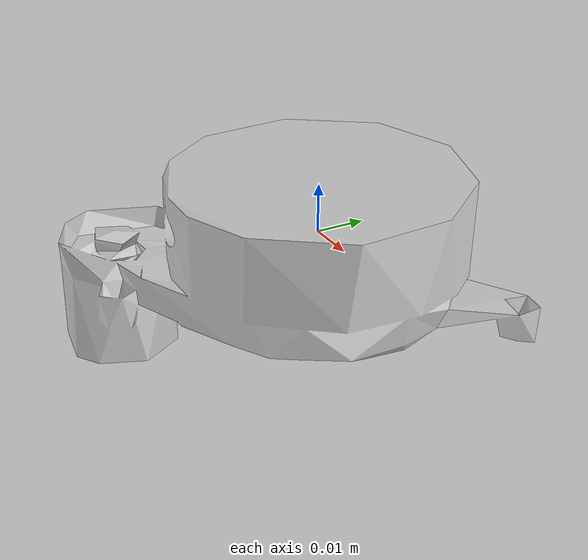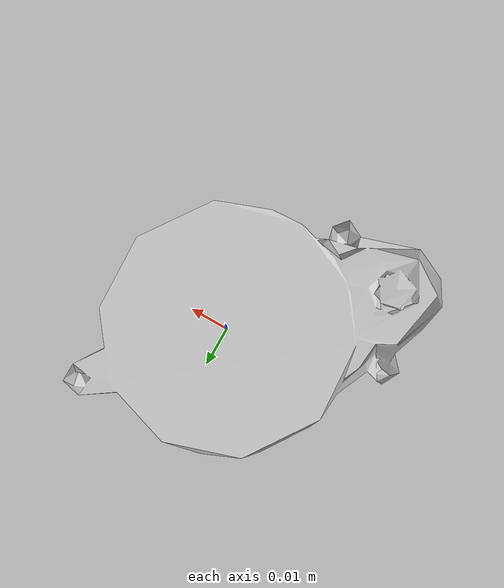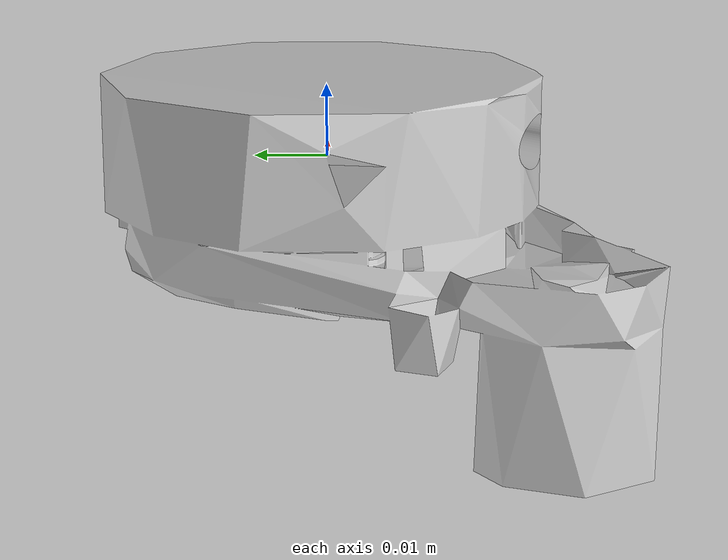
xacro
<?xml version="1.0"?>
<robot xmlns:controller="http://playerstage.sourceforge.net/gazebo/xmlschema/#controller"
    xmlns:interface="http://playerstage.sourceforge.net/gazebo/xmlschema/#interface"
    xmlns:sensor="http://playerstage.sourceforge.net/gazebo/xmlschema/#sensor"
    xmlns:xacro="http://ros.org/wiki/xacro" name="lidar">
    <xacro:property name="PI" value="3.14159" />
    <xacro:property name="lidar_radius" value="0.029" />
    <xacro:property name="lidar_height" value="0.017" />
    <xacro:macro name="cylinder_inertial" params="mass radius length">
        <inertial>
            <mass value="${mass}"/>
            <inertia ixx="${mass * (3 * radius * radius + length * length) / 12}" ixy="0.0" ixz="0.0" iyy="${mass * (3 * radius * radius + length * length) / 12}" iyz="0.0" izz="${mass * radius * radius / 2}"/>
        </inertial>
    </xacro:macro>
    <link name="lidar_link">
        <collision name="collision">
            <origin xyz="0 0 0" rpy="0 0 0"/>
            <geometry>
                <cylinder radius="${lidar_radius}" length="${lidar_height}"/>
            </geometry>
        </collision>
        <visual name="laser_visual">
            <origin xyz="0 0 0" rpy="0 0 0"/>
            <geometry>
                <mesh filename="package://sweeper_description/meshes/RobotLidar.dae" />
            </geometry>
        </visual>
        <cylinder_inertial mass="0.2" radius="${lidar_radius}" length="${lidar_height}"/>
    </link>

    <link name="laser_link">
    </link>

    <joint name="laser_joint" type="fixed">
      <axis rpy="0 0 0" xyz="0 0 0"/>
      <parent link="lidar_link"/>
      <child link="laser_link"/>
      <origin xyz="0 0 0.005" rpy="0 0 0"/>
    </joint>

    <gazebo reference="laser_link">
        <sensor type="ray" name="eai_lidar">
            <pose>0 0 0 0 0 0</pose>
            <visualize>false</visualize>
            <update_rate>5</update_rate>
            <ray>
                <scan>
                    <horizontal>
                        <samples>360</samples>
                        <resolution>1</resolution>
                        <min_angle>0</min_angle>
                        <max_angle>${PI * 2}</max_angle>
                    </horizontal>
                </scan>
                <range>
                    <min>0.10</min>
                    <max>8.0</max>
                    <resolution>0.01</resolution>
                </range>
                <noise>
                    <type>gaussian</type>
                    <mean>0.0</mean>
                    <stddev>0.01</stddev>
                </noise>
            </ray>
            <plugin name="gazebo_ros_lidar_controller" filename="libgazebo_ros_laser.so">
                <topicName>/scan</topicName>
                <frameName>lidar_link</frameName>
            </plugin>
        </sensor>
    </gazebo>
</robot>
